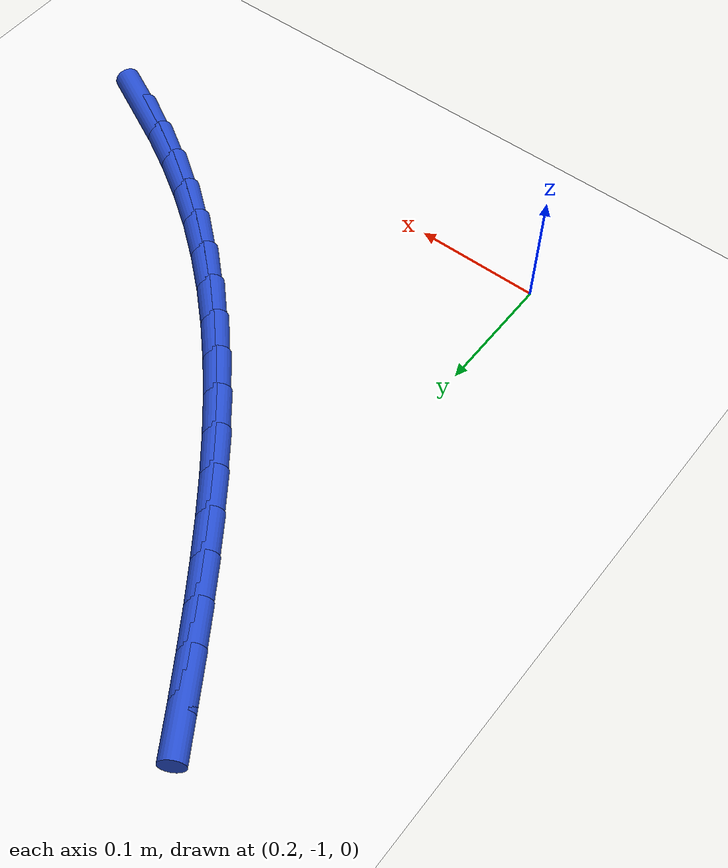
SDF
<sdf version="1.6">
 <world name="default">
  <model name="ground_plane">
   <static>1</static>
   <link name="link">
    <collision name="collision">
     <geometry><plane><normal>0 0 1</normal><size>100 100</size></plane></geometry>
     <surface><friction><ode><mu>100</mu><mu2>50</mu2></ode></friction></surface>
    </collision>
    <visual name="visual">
     <cast_shadows>0</cast_shadows>
     <geometry><plane><normal>0 0 1</normal><size>100 100</size></plane></geometry>
     <material>
      <script><uri>file://media/materials/scripts/gazebo.material</uri><name>Gazebo/WhiteGlow</name></script>
     </material>
    </visual>
   </link>
  </model>
  <model name="line">
   <link name="link_166">
    <pose>0.5579586990646751 -0.9612931807773764 0.01 0 1.57 -0.47149525483301513</pose>
    <collision name="collision">
     <geometry><cylinder><radius>0.01</radius><length>0.08</length></cylinder></geometry>
    </collision>
    <visual name="visual">
     <material>
      <script><name>Gazebo/Blue</name><uri>file://media/materials/scripts/gazebo.material</uri></script>
     </material>
     <geometry><cylinder><radius>0.01</radius><length>0.08</length></cylinder></geometry>
    </visual>
   </link>
   <link name="link_167">
    <pose>0.5272422884311654 -0.9456324678745052 0.01 0 1.57 -0.5218350596257338</pose>
    <collision name="collision">
     <geometry><cylinder><radius>0.01</radius><length>0.08</length></cylinder></geometry>
    </collision>
    <visual name="visual">
     <material>
      <script><name>Gazebo/Blue</name><uri>file://media/materials/scripts/gazebo.material</uri></script>
     </material>
     <geometry><cylinder><radius>0.01</radius><length>0.08</length></cylinder></geometry>
    </visual>
   </link>
   <link name="link_168">
    <pose>0.49745195611601084 -0.928502995881743 0.01 0 1.57 -0.5738549055336564</pose>
    <collision name="collision">
     <geometry><cylinder><radius>0.01</radius><length>0.08</length></cylinder></geometry>
    </collision>
    <visual name="visual">
     <material>
      <script><name>Gazebo/Blue</name><uri>file://media/materials/scripts/gazebo.material</uri></script>
     </material>
     <geometry><cylinder><radius>0.01</radius><length>0.08</length></cylinder></geometry>
    </visual>
   </link>
   <link name="link_169">
    <pose>0.4687135002847166 -0.9099258629203125 0.01 0 1.57 -0.6277892071226353</pose>
    <collision name="collision">
     <geometry><cylinder><radius>0.01</radius><length>0.08</length></cylinder></geometry>
    </collision>
    <visual name="visual">
     <material>
      <script><name>Gazebo/Blue</name><uri>file://media/materials/scripts/gazebo.material</uri></script>
     </material>
     <geometry><cylinder><radius>0.01</radius><length>0.08</length></cylinder></geometry>
    </visual>
   </link>
   <link name="link_170">
    <pose>0.4411510887614293 -0.8899228808799866 0.01 0 1.57 -0.6815908108615799</pose>
    <collision name="collision">
     <geometry><cylinder><radius>0.01</radius><length>0.08</length></cylinder></geometry>
    </collision>
    <visual name="visual">
     <material>
      <script><name>Gazebo/Blue</name><uri>file://media/materials/scripts/gazebo.material</uri></script>
     </material>
     <geometry><cylinder><radius>0.01</radius><length>0.08</length></cylinder></geometry>
    </visual>
   </link>
   <link name="link_171">
    <pose>0.41480834687236884 -0.8685511234082522 0.01 0 1.57 -0.731872079320109</pose>
    <collision name="collision">
     <geometry><cylinder><radius>0.01</radius><length>0.08</length></cylinder></geometry>
    </collision>
    <visual name="visual">
     <material>
      <script><name>Gazebo/Blue</name><uri>file://media/materials/scripts/gazebo.material</uri></script>
     </material>
     <geometry><cylinder><radius>0.01</radius><length>0.08</length></cylinder></geometry>
    </visual>
   </link>
   <link name="link_172">
    <pose>0.38961309396386573 -0.845918364373098 0.01 0 1.57 -0.7781585421715066</pose>
    <collision name="collision">
     <geometry><cylinder><radius>0.01</radius><length>0.08</length></cylinder></geometry>
    </collision>
    <visual name="visual">
     <material>
      <script><name>Gazebo/Blue</name><uri>file://media/materials/scripts/gazebo.material</uri></script>
     </material>
     <geometry><cylinder><radius>0.01</radius><length>0.08</length></cylinder></geometry>
    </visual>
   </link>
   <link name="link_173">
    <pose>0.36548417350893575 -0.8221363073079472 0.01 0 1.57 -0.820325329340369</pose>
    <collision name="collision">
     <geometry><cylinder><radius>0.01</radius><length>0.08</length></cylinder></geometry>
    </collision>
    <visual name="visual">
     <material>
      <script><name>Gazebo/Blue</name><uri>file://media/materials/scripts/gazebo.material</uri></script>
     </material>
     <geometry><cylinder><radius>0.01</radius><length>0.08</length></cylinder></geometry>
    </visual>
   </link>
   <link name="link_174">
    <pose>0.3423404289805945 -0.7973166557462231 0.01 0 1.57 -0.8583288706473876</pose>
    <collision name="collision">
     <geometry><cylinder><radius>0.01</radius><length>0.08</length></cylinder></geometry>
    </collision>
    <visual name="visual">
     <material>
      <script><name>Gazebo/Blue</name><uri>file://media/materials/scripts/gazebo.material</uri></script>
     </material>
     <geometry><cylinder><radius>0.01</radius><length>0.08</length></cylinder></geometry>
    </visual>
   </link>
   <link name="link_175">
    <pose>0.3201007038518577 -0.7715711132213492 0.01 0 1.57 -0.8921857350140684</pose>
    <collision name="collision">
     <geometry><cylinder><radius>0.01</radius><length>0.08</length></cylinder></geometry>
    </collision>
    <visual name="visual">
     <material>
      <script><name>Gazebo/Blue</name><uri>file://media/materials/scripts/gazebo.material</uri></script>
     </material>
     <geometry><cylinder><radius>0.01</radius><length>0.08</length></cylinder></geometry>
    </visual>
   </link>
   <link name="link_176">
    <pose>0.2986838415957409 -0.745011383266748 0.01 0 1.57 -0.9219526664336296</pose>
    <collision name="collision">
     <geometry><cylinder><radius>0.01</radius><length>0.08</length></cylinder></geometry>
    </collision>
    <visual name="visual">
     <material>
      <script><name>Gazebo/Blue</name><uri>file://media/materials/scripts/gazebo.material</uri></script>
     </material>
     <geometry><cylinder><radius>0.01</radius><length>0.08</length></cylinder></geometry>
    </visual>
   </link>
   <link name="link_177">
    <pose>0.2780086856852599 -0.7177491694158433 0.01 0 1.57 -0.9477090628709186</pose>
    <collision name="collision">
     <geometry><cylinder><radius>0.01</radius><length>0.08</length></cylinder></geometry>
    </collision>
    <visual name="visual">
     <material>
      <script><name>Gazebo/Blue</name><uri>file://media/materials/scripts/gazebo.material</uri></script>
     </material>
     <geometry><cylinder><radius>0.01</radius><length>0.08</length></cylinder></geometry>
    </visual>
   </link>
   <link name="link_178">
    <pose>0.2579940795934303 -0.6898961752020578 0.01 0 1.57 -0.9695423728563676</pose>
    <collision name="collision">
     <geometry><cylinder><radius>0.01</radius><length>0.08</length></cylinder></geometry>
    </collision>
    <visual name="visual">
     <material>
      <script><name>Gazebo/Blue</name><uri>file://media/materials/scripts/gazebo.material</uri></script>
     </material>
     <geometry><cylinder><radius>0.01</radius><length>0.08</length></cylinder></geometry>
    </visual>
   </link>
   <link name="link_179">
    <pose>0.23855886679326802 -0.661564104158815 0.01 0 1.57 -0.9875363652291509</pose>
    <collision name="collision">
     <geometry><cylinder><radius>0.01</radius><length>0.08</length></cylinder></geometry>
    </collision>
    <visual name="visual">
     <material>
      <script><name>Gazebo/Blue</name><uri>file://media/materials/scripts/gazebo.material</uri></script>
     </material>
     <geometry><cylinder><radius>0.01</radius><length>0.08</length></cylinder></geometry>
    </visual>
   </link>
   <link name="link_180">
    <pose>0.21962189075778846 -0.6328646598195379 0.01 0 1.57 -1.001761935676445</pose>
    <collision name="collision">
     <geometry><cylinder><radius>0.01</radius><length>0.08</length></cylinder></geometry>
    </collision>
    <visual name="visual">
     <material>
      <script><name>Gazebo/Blue</name><uri>file://media/materials/scripts/gazebo.material</uri></script>
     </material>
     <geometry><cylinder><radius>0.01</radius><length>0.08</length></cylinder></geometry>
    </visual>
   </link>
   <link name="link_181">
    <pose>0.20110199496000755 -0.6039095457176499 0.01 0 1.57 -1.0123733886136492</pose>
    <collision name="collision">
     <geometry><cylinder><radius>0.01</radius><length>0.08</length></cylinder></geometry>
    </collision>
    <visual name="visual">
     <material>
      <script><name>Gazebo/Blue</name><uri>file://media/materials/scripts/gazebo.material</uri></script>
     </material>
     <geometry><cylinder><radius>0.01</radius><length>0.08</length></cylinder></geometry>
    </visual>
   </link>
   <link name="link_182">
    <pose>0.18292069738877798 -0.5748080502952005 0.01 0 1.57 -1.0225185526256884</pose>
    <collision name="collision">
     <geometry><cylinder><radius>0.01</radius><length>0.08</length></cylinder></geometry>
    </collision>
    <visual name="visual">
     <material>
      <script><name>Gazebo/Blue</name><uri>file://media/materials/scripts/gazebo.material</uri></script>
     </material>
     <geometry><cylinder><radius>0.01</radius><length>0.08</length></cylinder></geometry>
    </visual>
   </link>
  </model>
 </world>
</sdf>
